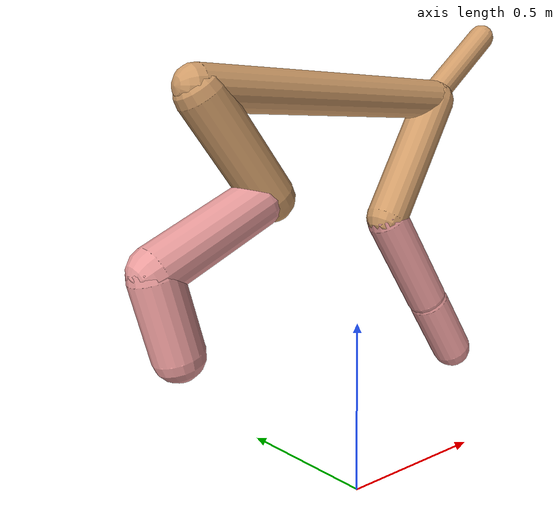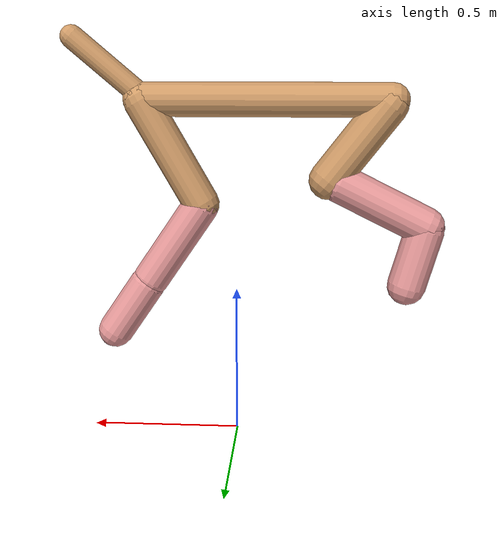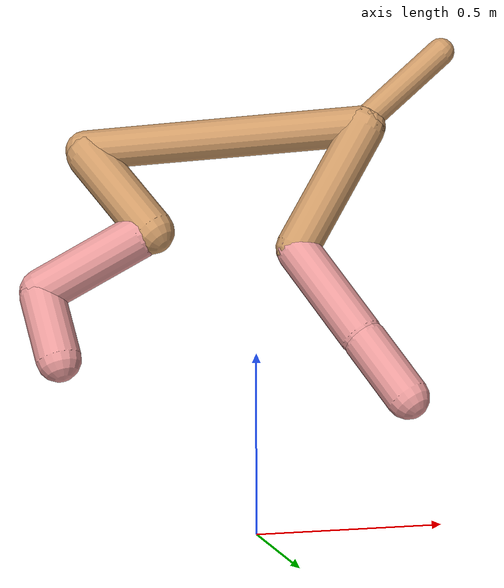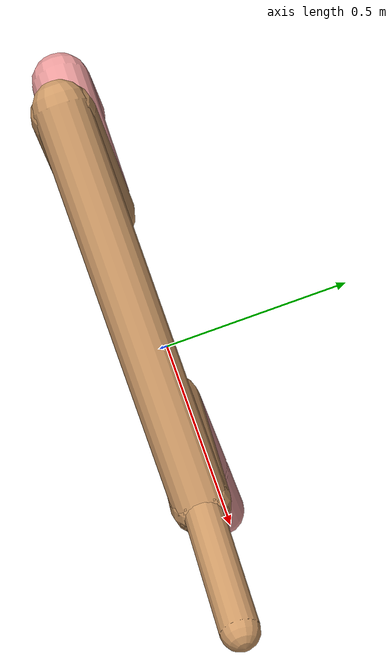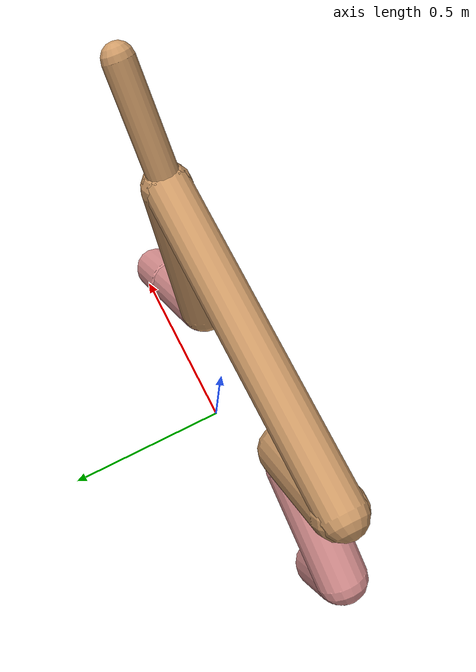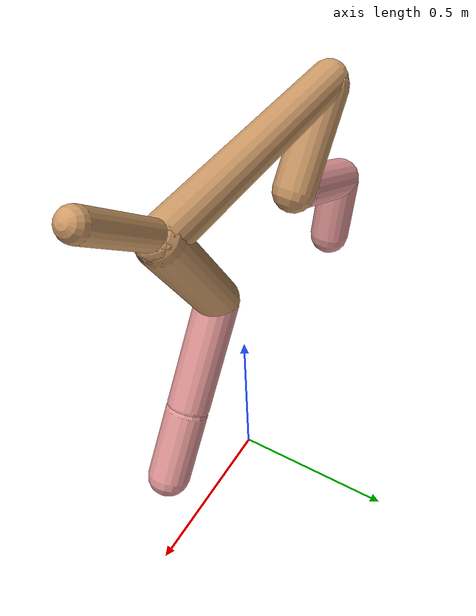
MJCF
<mujoco model="cheetah">
  <compiler angle="radian" coordinate="local" inertiafromgeom="true" settotalmass="14" />
  <default>
    <joint armature=".1" damping=".01" limited="true" solimplimit="0 .8 .03" solreflimit=".02 1" stiffness="8" />
    <geom conaffinity="0" condim="3" contype="1" friction="0.8 .1 .1" rgba="0.8 0.6 .4 1" solimp="0.0 0.8 0.01" solref="0.02 1" />
    <motor ctrllimited="true" ctrlrange="-1 1" />
  </default>
  <size nstack="300000" nuser_geom="1" />
  <option gravity="0 0 -9.81" timestep="0.01" />
  <worldbody>
    <body name="torso" pos="0.0 0.0 1.1331990033507031">
      <joint armature="0" axis="1 0 0" damping="0" limited="false" name="ignorex" pos="0 0 0" stiffness="0" type="slide" />
      <joint armature="0" axis="0 0 1" damping="0" limited="false" name="ignorez" pos="0 0 0" stiffness="0" type="slide" />
      <joint armature="0" axis="0 1 0" damping="0" limited="false" name="ignorey" pos="0 0 0" stiffness="0" type="hinge" />
      <geom fromto="-0.5 0.0 0.0 0.31216744424328324 0.0 0.0" name="torso" size="0.056024965732371756" type="capsule" />
      <geom axisangle="0 1 0 .87" name="head" pos="0.4121674442432832 0.0 0.1" size="0.0383420600541199 0.15" type="capsule" />

      <body name="bthigh" pos="-.5 0 0">
        <joint axis="0 1 0" damping="6" name="bthigh" pos="0 0 0" range="-.52 1.05" stiffness="240" type="hinge" />
        <geom axisangle="0 1 0 -3.8" name="bthigh" pos="0.1051807636931996 0.0 -0.1367349928011595" size="0.06454486720161491 0.15349708423380895" type="capsule" />
        <body name="bshin" pos="0.1703615273863992 0.0 -0.263469985602319">
          <joint axis="0 1 0" damping="4.5" name="bshin" pos="0 0 0" range="-.785 .785" stiffness="180" type="hinge" />
          <geom axisangle="0 1 0 -2.03" name="bshin" pos="-0.14786209294786426 0.0 -0.07393104647393213" rgba="0.9 0.6 0.6 1" size="0.06454486720161491 0.15879008713842307" type="capsule" />
          <body name="bfoot" pos="-0.2957241858957285 0.0 -0.14786209294786426">
            <joint axis="0 1 0" damping="3" name="bfoot" pos="0 0 0" range="-.4 .785" stiffness="120" type="hinge" />
            <geom axisangle="0 1 0 -.27" name="bfoot" pos="0.031627581556383774 0.0 -0.1022625136989742" rgba="0.9 0.6 0.6 1" size="0.06454486720161491 0.09950845460674512" type="capsule" />
            <inertial mass="10" />
          </body>
        </body>
      </body>
      <body name="fthigh" pos="0.31216744424328324 0.0 0.0">
        <joint axis="0 1 0" damping="4.5" name="fthigh" pos="0 0 0" range="-1.5 0.8" stiffness="180" type="hinge" />
        <geom axisangle="0 1 0 .52" name="fthigh" pos="-0.10036690864841634 0.0 -0.1720575576829994" size="0.059931946125749105 0.19326722536155183" type="capsule" />
        <body name="fshin" pos="-0.20073381729683268 0.0 -0.3441151153659988">
          <joint axis="0 1 0" damping="3" name="fshin" pos="0 0 0" range="-1.2 1.1" stiffness="120" type="hinge" />
          <geom axisangle="0 1 0 -.6" name="fshin" pos="0.0931225899435591 0.0 -0.12893897069108182" rgba="0.9 0.6 0.6 1" size="0.059931946125749105 0.154032525476124" type="capsule" />
          <body name="ffoot" pos="0.1862451798871182 0.0 -0.25787794138216363">
            <joint axis="0 1 0" damping="1.5" name="ffoot" pos="0 0 0" range="-3.1 -0.3" stiffness="60" type="hinge" />
            <geom axisangle="0 1 0 -.6" name="ffoot" pos="0.06215261032718976 0.0 -0.09668183828673964" rgba="0.9 0.6 0.6 1" size="0.059931946125749105 0.10171959229555359" type="capsule" />
            <inertial mass="10" />
          </body>
        </body>
      </body>
    </body>
  </worldbody>
  <actuator>
    <motor gear="120" joint="bthigh" name="bthigh" />
    <motor gear="90" joint="bshin" name="bshin" />
    <motor gear="60" joint="bfoot" name="bfoot" />
    <motor gear="120" joint="fthigh" name="fthigh" />
    <motor gear="60" joint="fshin" name="fshin" />
    <motor gear="30" joint="ffoot" name="ffoot" />
  </actuator>
</mujoco>
